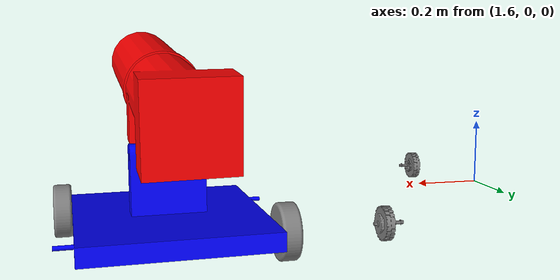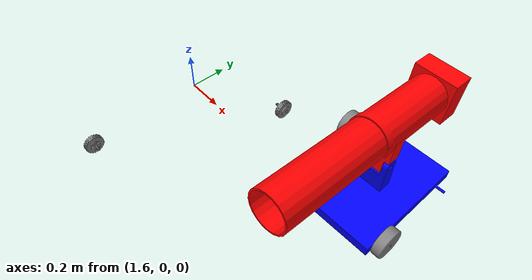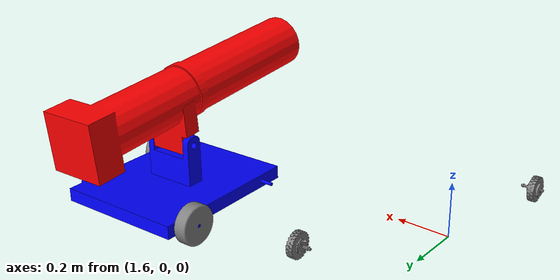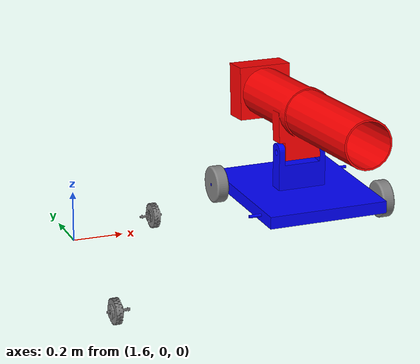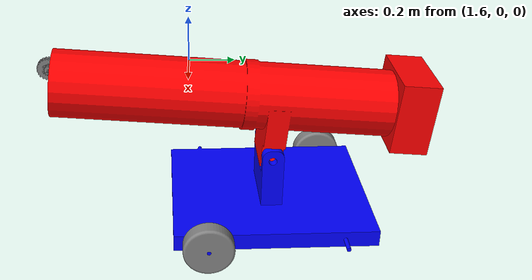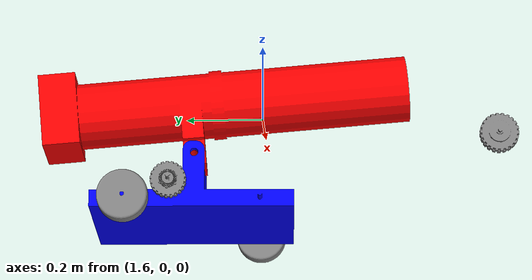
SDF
<?xml version="1.0" encoding="utf-8"?>
<sdf version="1.5">
  <model name="CannonTest">
    <pose>0 0 -0.05334 0 0 0</pose>
    <plugin name="clock" filename="libgz_clock.so">
      <topic>/gazebo/frc/time</topic>
    </plugin>
    <link name="Chassis">
      <gravity>1</gravity>
      <self_collide>0</self_collide>
      <pose>0.304801886904009 0.254006226547669 0.0342053428597835 1.5707963267949 -3.37849678924218E-18 -1.53617232855595</pose>
      <must_be_base_link>1</must_be_base_link>
      <velocity_decay>
        <linear>0</linear>
        <angular>0</angular>
      </velocity_decay>
      <inertial>
        <mass>47.0466978789159</mass>
        <pose>0 0 0 0 0 0</pose>
        <inertia>
          <ixx>1.37190611172484</ixx>
          <ixy>4.69227181351873E-05</ixy>
          <ixz>0.0132301194332059</ixz>
          <iyy>2.25733306126557</iyy>
          <iyz>1.69411125148096E-05</iyz>
          <izz>0.990407610659257</izz>
        </inertia>
      </inertial>
      <collision name="Chassis_collision">
        <pose>0.00329565928721906 0.00273373914755762 -1.10322730744152 0 0 0</pose>
        <geometry>
          <mesh>
            <scale>1 1 1</scale>
            <uri>model://CannonTest/meshes/Chassis_col.STL</uri>
          </mesh>
        </geometry>
        <surface>
          <contact>
            <ode />
          </contact>
          <friction>
            <ode>
              <mu>0</mu>
              <mu2>0</mu2>
            </ode>
          </friction>
        </surface>
      </collision>
      <visual name="Chassis_visual">
        <pose>0.00329565928721906 0.00273373914755762 -1.10322730744152 0 0 0</pose>
        <material>
          <ambient>0 0 1 1</ambient>
          <diffuse>0 0 1 1</diffuse>
        </material>
        <geometry>
          <mesh>
            <scale>1 1 1</scale>
            <uri>model://CannonTest/meshes/Chassis.STL</uri>
          </mesh>
        </geometry>
      </visual>
    </link>
    <link name="LFWheel">
      <gravity>1</gravity>
      <self_collide>0</self_collide>
      <pose>0.1016 -0.0254 0.0254 1.5707963267949 -3.37849678924218E-18 -1.53617232855595</pose>
      <must_be_base_link>0</must_be_base_link>
      <velocity_decay>
        <linear>0</linear>
        <angular>0</angular>
      </velocity_decay>
      <inertial>
        <mass>0.915001295566967</mass>
        <pose>0 0 0 0 0 0</pose>
        <inertia>
          <ixx>0.00262416197279721</ixx>
          <ixy>1.35619431571476E-19</ixy>
          <ixz>3.87491230957322E-05</ixz>
          <iyy>0.00150546859814331</iyy>
          <iyz>9.95108204543819E-21</iyz>
          <izz>0.00150681078410303</izz>
        </inertia>
      </inertial>
      <collision name="LFWheel_collision">
        <pose>-0.268908848821357 0.0115390820073411 -1.31597963302299 0 0 0</pose>
        <geometry>
          <mesh>
            <scale>1 1 1</scale>
            <uri>model://CannonTest/meshes/LFWheel_col.STL</uri>
          </mesh>
        </geometry>
        <surface>
          <contact>
            <ode />
          </contact>
          <friction>
            <ode>
              <mu>1</mu>
              <mu2>1</mu2>
            </ode>
          </friction>
        </surface>
      </collision>
      <visual name="LFWheel_visual">
        <pose>-0.268908848821357 0.0115390820073411 -1.31597963302299 0 0 0</pose>
        <material>
          <ambient>0.501960784313725 0.501960784313725 0.501960784313725 1</ambient>
          <diffuse>0.501960784313725 0.501960784313725 0.501960784313725 1</diffuse>
        </material>
        <geometry>
          <mesh>
            <scale>1 1 1</scale>
            <uri>model://CannonTest/meshes/LFWheel.STL</uri>
          </mesh>
        </geometry>
      </visual>
    </link>
    <joint name="Chassis-LFWheel" type="revolute">
      <parent>Chassis</parent>
      <child>LFWheel</child>
      <pose>-5.55111512312578E-17 -3.46944695195361E-18 0 0 6.24856130894064 0</pose>
      <axis>
        <xyz>1 0 -1.39471767468535E-15</xyz>
        <dynamics>
          <damping>1</damping>
          <friction>10</friction>
        </dynamics>
        <limit>
          <effort>100</effort>
        </limit>
      </axis>
    </joint>
    <link name="LRWheel">
      <gravity>1</gravity>
      <self_collide>0</self_collide>
      <pose>0.508 -0.0254 0.0253999999999999 1.5707963267949 -3.37849678924218E-18 -1.53617232855595</pose>
      <must_be_base_link>0</must_be_base_link>
      <velocity_decay>
        <linear>0</linear>
        <angular>0</angular>
      </velocity_decay>
      <inertial>
        <mass>0.908566110582429</mass>
        <pose>0 0 0 0 0 0</pose>
        <inertia>
          <ixx>0.0026240306507658</ixx>
          <ixy>5.03855404980647E-20</ixy>
          <ixz>3.87947569490717E-05</ixz>
          <iyy>0.00150401981947514</iyy>
          <iyz>6.99987235942654E-21</iyz>
          <izz>0.001505363586093</izz>
        </inertia>
      </inertial>
      <collision name="LRWheel_collision">
        <pose>-0.2829772304 0.0115390820073411 -0.909823209166664 0 0 0</pose>
        <geometry>
          <mesh>
            <scale>1 1 1</scale>
            <uri>model://CannonTest/meshes/LRWheel_col.STL</uri>
          </mesh>
        </geometry>
        <surface>
          <contact>
            <ode />
          </contact>
          <friction>
            <ode>
              <mu>1</mu>
              <mu2>1</mu2>
            </ode>
          </friction>
        </surface>
      </collision>
      <visual name="LRWheel_visual">
        <pose>-0.2829772304 0.0115390820073411 -0.909823209166664 0 0 0</pose>
        <material>
          <ambient>0.501960784313725 0.501960784313725 0.501960784313725 1</ambient>
          <diffuse>0.501960784313725 0.501960784313725 0.501960784313725 1</diffuse>
        </material>
        <geometry>
          <mesh>
            <scale>1 1 1</scale>
            <uri>model://CannonTest/meshes/LRWheel.STL</uri>
          </mesh>
        </geometry>
      </visual>
    </link>
    <joint name="Chassis-LRWheel" type="revolute">
      <parent>Chassis</parent>
      <child>LRWheel</child>
      <pose>0 0 0 0 6.24856130894064 0</pose>
      <axis>
        <xyz>1 0 -8.32667268468867E-16</xyz>
        <dynamics>
          <damping>1</damping>
          <friction>10</friction>
        </dynamics>
        <limit>
          <effort>100</effort>
        </limit>
      </axis>
    </joint>
    <link name="RFWheel">
      <gravity>1</gravity>
      <self_collide>0</self_collide>
      <pose>0.1016 0.5334 0.0253999999999999 1.5707963267949 -3.37849678924218E-18 -1.53617232855595</pose>
      <must_be_base_link>0</must_be_base_link>
      <velocity_decay>
        <linear>0</linear>
        <angular>0</angular>
      </velocity_decay>
      <inertial>
        <mass>0.915001295566967</mass>
        <pose>0 0 0 0 0 0</pose>
        <inertia>
          <ixx>0.00262416197279721</ixx>
          <ixy>3.22797337534101E-19</ixy>
          <ixz>3.87491230957327E-05</ixz>
          <iyy>0.00150546859814331</iyy>
          <iyz>7.164355951129E-21</iyz>
          <izz>0.00150681078410303</izz>
        </inertia>
      </inertial>
      <collision name="RFWheel_collision">
        <pose>0.289556233981089 0.0115390820073412 -1.29663560835235 0 0 0</pose>
        <geometry>
          <mesh>
            <scale>1 1 1</scale>
            <uri>model://CannonTest/meshes/RFWheel_col.STL</uri>
          </mesh>
        </geometry>
        <surface>
          <contact>
            <ode />
          </contact>
          <friction>
            <ode>
              <mu>1</mu>
              <mu2>1</mu2>
            </ode>
          </friction>
        </surface>
      </collision>
      <visual name="RFWheel_visual">
        <pose>0.289556233981089 0.0115390820073412 -1.29663560835235 0 0 0</pose>
        <material>
          <ambient>0.501960784313725 0.501960784313725 0.501960784313725 1</ambient>
          <diffuse>0.501960784313725 0.501960784313725 0.501960784313725 1</diffuse>
        </material>
        <geometry>
          <mesh>
            <scale>1 1 1</scale>
            <uri>model://CannonTest/meshes/RFWheel.STL</uri>
          </mesh>
        </geometry>
      </visual>
    </link>
    <joint name="Chassis-RFWheel" type="revolute">
      <parent>Chassis</parent>
      <child>RFWheel</child>
      <pose>-5.55111512312578E-17 1.04083408558608E-17 0 0 6.24856130894064 0</pose>
      <axis>
        <xyz>1 0 -1.39471767468535E-15</xyz>
        <dynamics>
          <damping>1</damping>
          <friction>10</friction>
        </dynamics>
        <limit>
          <effort>100</effort>
        </limit>
      </axis>
    </joint>
    <link name="RRWheel">
      <gravity>1</gravity>
      <self_collide>0</self_collide>
      <pose>0.508 0.5334 0.0253999999999999 1.5707963267949 -3.37849678924218E-18 -1.53617232855595</pose>
      <must_be_base_link>0</must_be_base_link>
      <velocity_decay>
        <linear>0</linear>
        <angular>0</angular>
      </velocity_decay>
      <inertial>
        <mass>0.908566110582429</mass>
        <pose>0 0 0 0 0 0</pose>
        <inertia>
          <ixx>0.0026240306507658</ixx>
          <ixy>4.89911970572986E-20</ixy>
          <ixz>3.87947569490717E-05</ixz>
          <iyy>0.00150401981947514</iyy>
          <iyz>4.10885599491715E-21</iyz>
          <izz>0.001505363586093</izz>
        </inertia>
      </inertial>
      <collision name="RRWheel_collision">
        <pose>0.275487852402445 0.0115390820073412 -0.89047918449603 0 0 0</pose>
        <geometry>
          <mesh>
            <scale>1 1 1</scale>
            <uri>model://CannonTest/meshes/RRWheel_col.STL</uri>
          </mesh>
        </geometry>
        <surface>
          <contact>
            <ode />
          </contact>
          <friction>
            <ode>
              <mu>1</mu>
              <mu2>1</mu2>
            </ode>
          </friction>
        </surface>
      </collision>
      <visual name="RRWheel_visual">
        <pose>0.275487852402445 0.0115390820073412 -0.89047918449603 0 0 0</pose>
        <material>
          <ambient>0.501960784313725 0.501960784313725 0.501960784313725 1</ambient>
          <diffuse>0.501960784313725 0.501960784313725 0.501960784313725 1</diffuse>
        </material>
        <geometry>
          <mesh>
            <scale>1 1 1</scale>
            <uri>model://CannonTest/meshes/RRWheel.STL</uri>
          </mesh>
        </geometry>
      </visual>
    </link>
    <joint name="Chassis-RRWheel" type="revolute">
      <parent>Chassis</parent>
      <child>RRWheel</child>
      <pose>-1.66533453693773E-16 3.46944695195361E-18 0 0 6.24856130894064 0</pose>
      <axis>
        <xyz>1 0 -8.32667268468867E-16</xyz>
        <dynamics>
          <damping>1</damping>
          <friction>10</friction>
        </dynamics>
        <limit>
          <effort>100</effort>
        </limit>
      </axis>
    </joint>
    <link name="Cannon">
      <gravity>1</gravity>
      <self_collide>0</self_collide>
      <pose>0.151681994631937 0.254123701178184 0.379844842998629 1.5707963267949 -3.37849678924218E-18 -1.53617232855595</pose>
      <must_be_base_link>0</must_be_base_link>
      <velocity_decay>
        <linear>0</linear>
        <angular>0</angular>
      </velocity_decay>
      <inertial>
        <mass>18.8219126736624</mass>
        <pose>0 0 0 0 0 0</pose>
        <inertia>
          <ixx>1.84538739714775</ixx>
          <ixy>0.0110030963182516</ixy>
          <ixz>0.0524769500835223</ixz>
          <iyy>1.72544396890633</iyy>
          <iyz>0.354394231515775</iyz>
          <izz>0.288331023002287</izz>
        </inertia>
      </inertial>
      <collision name="Cannon_collision">
        <pose>0.00871362717006364 -0.342905760991288 -1.25625136056298 0 0 0</pose>
        <geometry>
          <mesh>
            <scale>1 1 1</scale>
            <uri>model://CannonTest/meshes/Cannon_col.STL</uri>
          </mesh>
        </geometry>
        <surface>
          <contact>
            <ode />
          </contact>
          <friction>
            <ode>
              <mu>0</mu>
              <mu2>0</mu2>
            </ode>
          </friction>
        </surface>
      </collision>
      <visual name="Cannon_visual">
        <pose>0.00871362717006364 -0.342905760991288 -1.25625136056298 0 0 0</pose>
        <material>
          <ambient>1 0 0 1</ambient>
          <diffuse>1 0 0 1</diffuse>
        </material>
        <geometry>
          <mesh>
            <scale>1 1 1</scale>
            <uri>model://CannonTest/meshes/Cannon.STL</uri>
          </mesh>
        </geometry>
      </visual>
    </link>
    <joint name="Chassis-Cannon" type="revolute">
      <parent>Chassis</parent>
      <child>Cannon</child>
      <pose>0.00523417568849553 -0.173214327921117 -0.151757769618706 0 0.0346239982389471 3.14159265358979</pose>
      <axis>
        <xyz>1 7.3965367354622E-15 0</xyz>
        <dynamics>
          <damping>1</damping>
          <friction>1</friction>
        </dynamics>
        <limit>
          <upper>0</upper>
          <lower>0</lower>
          <effort>200</effort>
        </limit>
      </axis>
    </joint>
    <link name="Piston">
      <gravity>1</gravity>
      <self_collide>0</self_collide>
      <pose>0.258539922096759 0.253612784694248 0.387368780486746 1.5707963267949 -3.37849678924218E-18 -1.53617232855595</pose>
      <must_be_base_link>0</must_be_base_link>
      <velocity_decay>
        <linear>0</linear>
        <angular>0</angular>
      </velocity_decay>
      <inertial>
        <mass>4.62311523819618</mass>
        <pose>0 0 0 0 0 0</pose>
        <inertia>
          <ixx>0.456567930145135</ixx>
          <ixy>0.00260839646038143</ixy>
          <ixz>0.0147840852576265</ixz>
          <iyy>0.443793783829724</iyy>
          <iyz>0.0753048225501864</iyz>
          <izz>0.0302611155224095</izz>
        </inertia>
      </inertial>
      <collision name="Piston_collision">
        <pose>0.00450390741050995 -0.350429698479405 -1.14947516491396 0 0 0</pose>
        <geometry>
          <mesh>
            <scale>1 1 1</scale>
            <uri>model://CannonTest/meshes/Piston_col.STL</uri>
          </mesh>
        </geometry>
        <surface>
          <contact>
            <ode />
          </contact>
          <friction>
            <ode>
              <mu>0</mu>
              <mu2>0</mu2>
            </ode>
          </friction>
        </surface>
      </collision>
      <visual name="Piston_visual">
        <pose>0.00450390741050995 -0.350429698479405 -1.14947516491396 0 0 0</pose>
        <material>
          <ambient>1 0 0 1</ambient>
          <diffuse>1 0 0 1</diffuse>
        </material>
        <geometry>
          <mesh>
            <scale>1 1 1</scale>
            <uri>model://CannonTest/meshes/Piston.STL</uri>
          </mesh>
        </geometry>
      </visual>
    </link>
    <joint name="Cannon-Piston" type="prismatic">
      <parent>Cannon</parent>
      <child>Piston</child>
      <pose>0.0132778258421766 -0.210058047627282 -0.383332953438826 0 5.32410965771977 0.611146954225631</pose>
      <axis>
        <xyz>0.846927848459373 0.161777952869656 0.506498878053329</xyz>
        <dynamics>
          <damping>1</damping>
          <friction>1</friction>
        </dynamics>
        <limit>
          <upper>2</upper>
          <lower>0</lower>
          <effort>100</effort>
        </limit>
      </axis>
    </joint>
    <plugin name="Chassis-LFWheel_motor" filename="libgz_dc_motor.so">
      <joint>Chassis-LFWheel</joint>
      <topic>/gazebo/frc/simulator/pwm/1</topic>
      <multiplier>25</multiplier>
    </plugin>
    <plugin name="Chassis-LFWheel_encoder" filename="libgz_encoder.so">
      <joint>Chassis-LFWheel</joint>
      <topic>/gazebo/frc/simulator/dio/1/2</topic>
      <units>degrees</units>
    </plugin>
    <plugin name="Chassis-LRWheel_motor" filename="libgz_dc_motor.so">
      <joint>Chassis-LRWheel</joint>
      <topic>/gazebo/frc/simulator/pwm/2</topic>
      <multiplier>25</multiplier>
    </plugin>
    <plugin name="Chassis-LRWheel_encoder" filename="libgz_encoder.so">
      <joint>Chassis-LRWheel</joint>
      <topic>/gazebo/frc/simulator/dio/3/4</topic>
      <units>degrees</units>
    </plugin>
    <plugin name="Chassis-RFWheel_motor" filename="libgz_dc_motor.so">
      <joint>Chassis-RFWheel</joint>
      <topic>/gazebo/frc/simulator/pwm/3</topic>
      <multiplier>25</multiplier>
    </plugin>
    <plugin name="Chassis-RFWheel_encoder" filename="libgz_encoder.so">
      <joint>Chassis-RFWheel</joint>
      <topic>/gazebo/frc/simulator/dio/5/6</topic>
      <units>degrees</units>
    </plugin>
    <plugin name="Chassis-RRWheel_motor" filename="libgz_dc_motor.so">
      <joint>Chassis-RRWheel</joint>
      <topic>/gazebo/frc/simulator/pwm/4</topic>
      <multiplier>24</multiplier>
    </plugin>
    <plugin name="Chassis-RRWheel_encoder" filename="libgz_encoder.so">
      <joint>Chassis-RRWheel</joint>
      <topic>/gazebo/frc/simulator/dio/7/8</topic>
      <units>degrees</units>
    </plugin>
    <plugin name="Chassis-Cannon_motor" filename="libgz_dc_motor.so">
      <joint>Chassis-Cannon</joint>
      <topic>/gazebo/frc/simulator/pwm/9</topic>
      <multiplier>50</multiplier>
    </plugin>
    <plugin name="Chassis-Cannon_encoder" filename="libgz_encoder.so">
      <joint>Chassis-Cannon</joint>
      <topic>/gazebo/frc/simulator/dio/17/18</topic>
      <units>degrees</units>
    </plugin>
    <plugin name="Cannon-Piston_piston" filename="libgz_pneumatic_piston.so">
      <joint>Cannon-Piston</joint>
      <topic>/gazebo/frc/simulator/pneumatic/1/1</topic>
      <forward-force>100</forward-force>
      <reverse-force>100</reverse-force>
    </plugin>
  </model>
</sdf>
